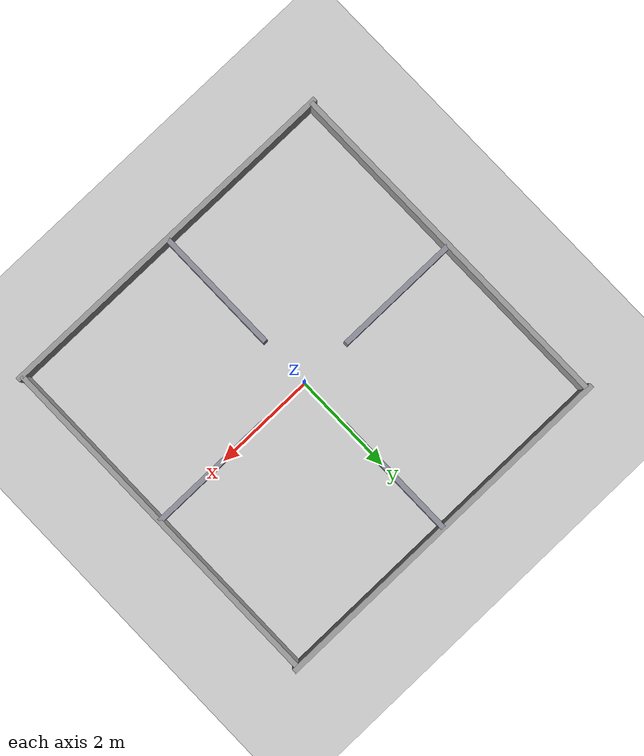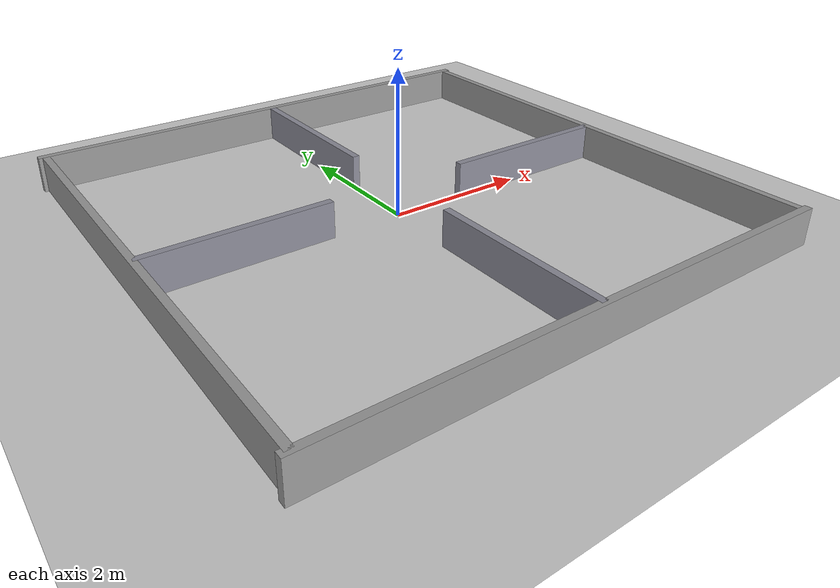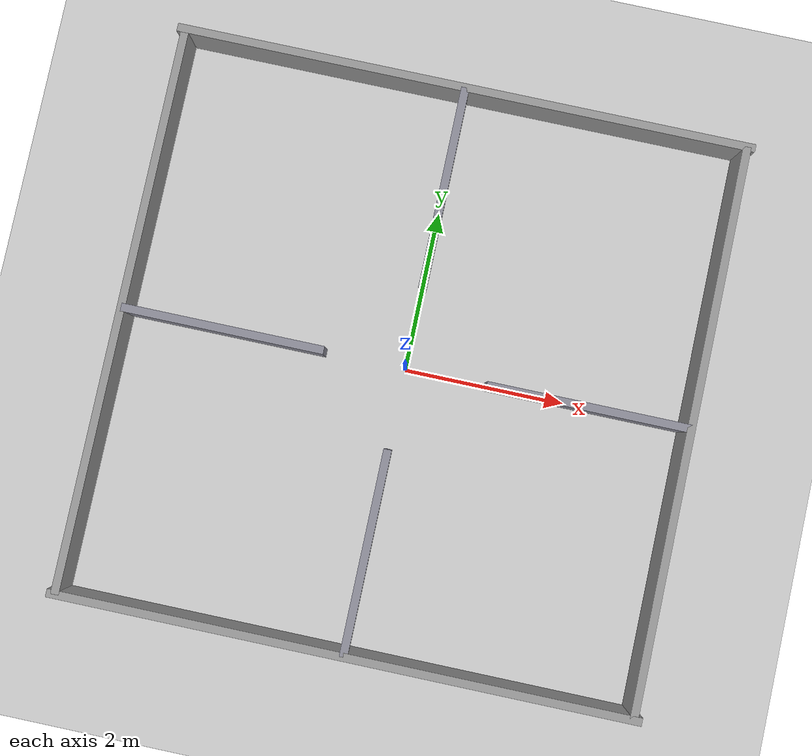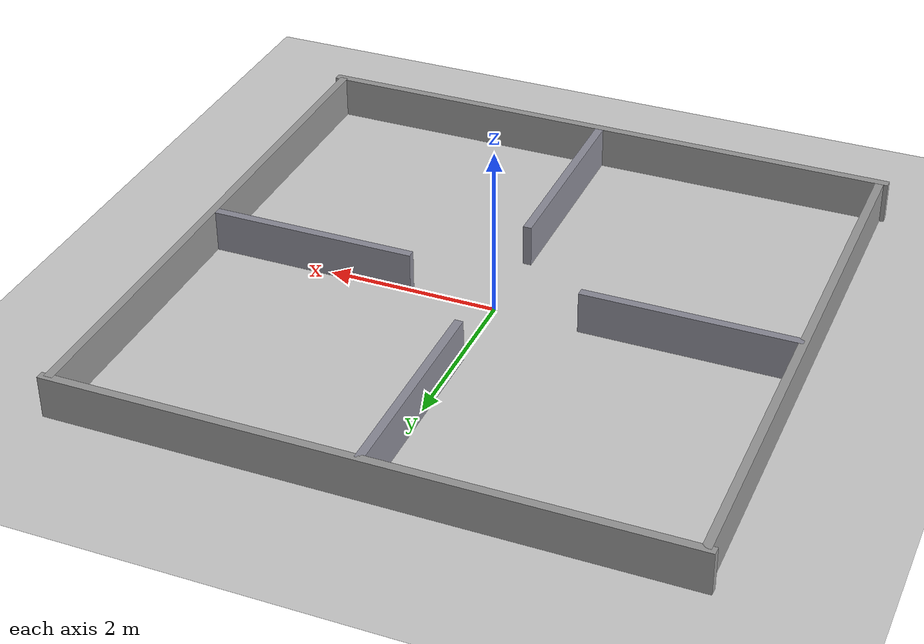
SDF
<?xml version="1.0" ?>
<sdf version="1.9">
  <world name="aircore_world">
    <physics name="4ms" type="ode">
      <max_step_size>0.004</max_step_size>
      <real_time_factor>1.0</real_time_factor>
      <real_time_update_rate>250</real_time_update_rate>
      <ode>
        <solver>
          <type>quick</type>
          <iters>50</iters>
          <sor>1.0</sor>
        </solver>
        <constraints>
          <cfm>0.0001</cfm>
          <erp>0.2</erp>
          <contact_max_correcting_vel>0.5</contact_max_correcting_vel>
          <contact_surface_layer>0.001</contact_surface_layer>
        </constraints>
      </ode>
    </physics>

    <plugin filename="gz-sim-physics-system" name="gz::sim::systems::Physics"/>
    <plugin filename="gz-sim-user-commands-system" name="gz::sim::systems::UserCommands"/>
    <plugin filename="gz-sim-scene-broadcaster-system" name="gz::sim::systems::SceneBroadcaster"/>
    <plugin filename="gz-sim-sensors-system" name="gz::sim::systems::Sensors">
      <render_engine>ogre2</render_engine>
    </plugin>

    <light type="directional" name="sun">
      <cast_shadows>true</cast_shadows>
      <pose>0 0 10 0 0 0</pose>
      <diffuse>0.8 0.8 0.8 1</diffuse>
      <specular>0.2 0.2 0.2 1</specular>
      <attenuation>
        <range>1000</range>
        <constant>0.9</constant>
        <linear>0.01</linear>
        <quadratic>0.001</quadratic>
      </attenuation>
      <direction>-0.5 0.1 -0.9</direction>
    </light>

    <model name="ground_plane">
      <static>true</static>
      <link name="link">
        <collision name="collision">
          <geometry>
            <plane>
              <normal>0 0 1</normal>
              <size>100 100</size>
            </plane>
          </geometry>
          <surface>
            <friction>
              <ode>
                <mu>1.0</mu>
                <mu2>1.0</mu2>
              </ode>
            </friction>
          </surface>
        </collision>
        <visual name="visual">
          <geometry>
            <plane>
              <normal>0 0 1</normal>
              <size>100 100</size>
            </plane>
          </geometry>
          <material>
            <ambient>0.8 0.8 0.8 1</ambient>
            <diffuse>0.8 0.8 0.8 1</diffuse>
            <specular>0.8 0.8 0.8 1</specular>
          </material>
        </visual>
      </link>
    </model>

    <!--
      7m x 7m 방을 십자(+)로 4개 소방으로 나눔. 로봇은 중앙 교차로(가로/세로 각
      2m 통로)에서 스폰되고, 거기서 네 방으로 다 갈 수 있음. 통로 폭은 2m라
      wander.py의 단순 장애물 회피로도 막히지 않고 지나갈 수 있게 여유를 뒀음.
    -->
    <model name="wall_north">
      <static>true</static>
      <pose>0 3.5 0.25 0 0 0</pose>
      <link name="link">
        <collision name="collision"><geometry><box><size>7.2 0.1 0.5</size></box></geometry></collision>
        <visual name="visual">
          <geometry><box><size>7.2 0.1 0.5</size></box></geometry>
          <material><ambient>0.6 0.6 0.6 1</ambient><diffuse>0.6 0.6 0.6 1</diffuse></material>
        </visual>
      </link>
    </model>

    <model name="wall_south">
      <static>true</static>
      <pose>0 -3.5 0.25 0 0 0</pose>
      <link name="link">
        <collision name="collision"><geometry><box><size>7.2 0.1 0.5</size></box></geometry></collision>
        <visual name="visual">
          <geometry><box><size>7.2 0.1 0.5</size></box></geometry>
          <material><ambient>0.6 0.6 0.6 1</ambient><diffuse>0.6 0.6 0.6 1</diffuse></material>
        </visual>
      </link>
    </model>

    <model name="wall_east">
      <static>true</static>
      <pose>3.5 0 0.25 0 0 0</pose>
      <link name="link">
        <collision name="collision"><geometry><box><size>0.1 7 0.5</size></box></geometry></collision>
        <visual name="visual">
          <geometry><box><size>0.1 7 0.5</size></box></geometry>
          <material><ambient>0.6 0.6 0.6 1</ambient><diffuse>0.6 0.6 0.6 1</diffuse></material>
        </visual>
      </link>
    </model>

    <model name="wall_west">
      <static>true</static>
      <pose>-3.5 0 0.25 0 0 0</pose>
      <link name="link">
        <collision name="collision"><geometry><box><size>0.1 7 0.5</size></box></geometry></collision>
        <visual name="visual">
          <geometry><box><size>0.1 7 0.5</size></box></geometry>
          <material><ambient>0.6 0.6 0.6 1</ambient><diffuse>0.6 0.6 0.6 1</diffuse></material>
        </visual>
      </link>
    </model>

    <!-- 세로 칸막이 (중앙 y:-1~1은 통로로 비워둠) -->
    <model name="divider_v_south">
      <static>true</static>
      <pose>0 -2.25 0.25 0 0 0</pose>
      <link name="link">
        <collision name="collision"><geometry><box><size>0.1 2.5 0.5</size></box></geometry></collision>
        <visual name="visual">
          <geometry><box><size>0.1 2.5 0.5</size></box></geometry>
          <material><ambient>0.55 0.55 0.6 1</ambient><diffuse>0.55 0.55 0.6 1</diffuse></material>
        </visual>
      </link>
    </model>

    <model name="divider_v_north">
      <static>true</static>
      <pose>0 2.25 0.25 0 0 0</pose>
      <link name="link">
        <collision name="collision"><geometry><box><size>0.1 2.5 0.5</size></box></geometry></collision>
        <visual name="visual">
          <geometry><box><size>0.1 2.5 0.5</size></box></geometry>
          <material><ambient>0.55 0.55 0.6 1</ambient><diffuse>0.55 0.55 0.6 1</diffuse></material>
        </visual>
      </link>
    </model>

    <!-- 가로 칸막이 (중앙 x:-1~1은 통로로 비워둠) -->
    <model name="divider_h_west">
      <static>true</static>
      <pose>-2.25 0 0.25 0 0 0</pose>
      <link name="link">
        <collision name="collision"><geometry><box><size>2.5 0.1 0.5</size></box></geometry></collision>
        <visual name="visual">
          <geometry><box><size>2.5 0.1 0.5</size></box></geometry>
          <material><ambient>0.55 0.55 0.6 1</ambient><diffuse>0.55 0.55 0.6 1</diffuse></material>
        </visual>
      </link>
    </model>

    <model name="divider_h_east">
      <static>true</static>
      <pose>2.25 0 0.25 0 0 0</pose>
      <link name="link">
        <collision name="collision"><geometry><box><size>2.5 0.1 0.5</size></box></geometry></collision>
        <visual name="visual">
          <geometry><box><size>2.5 0.1 0.5</size></box></geometry>
          <material><ambient>0.55 0.55 0.6 1</ambient><diffuse>0.55 0.55 0.6 1</diffuse></material>
        </visual>
      </link>
    </model>

    <!-- 사용자 요청으로 방 안 장애물(기둥/박스/L자벽) 전부 제거함 — 벽+칸막이만
         남겨서 wander/SLAM이 장애물에 걸려 헛돌거나 오도메트리가 튀는 문제
         없이 안정적으로 맵을 만들 수 있게 함. 필요하면 이 주석 아래에
         README_NAV2.md 15~17절에 기록된 좌표 그대로 복원 가능. -->
  </world>
</sdf>
